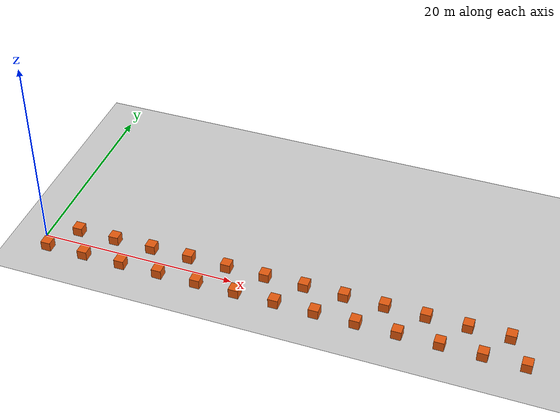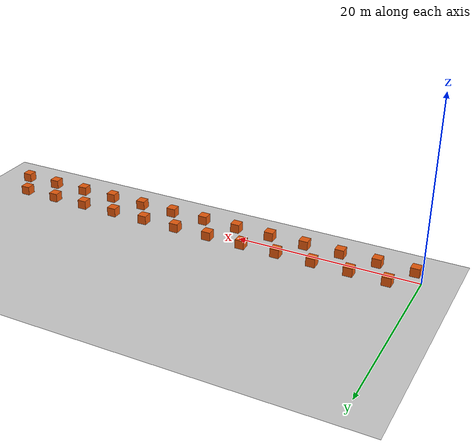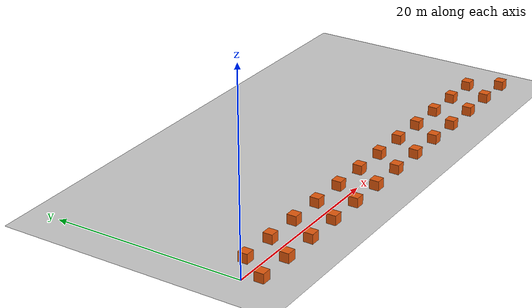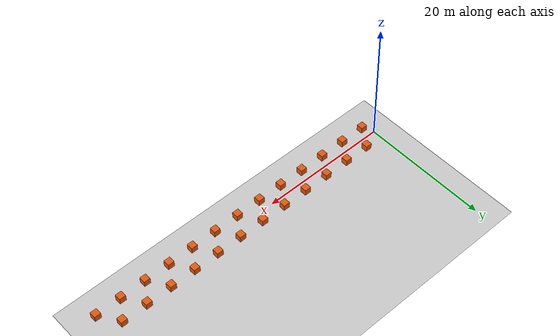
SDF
<?xml version="1.0" ?>
<sdf version="1.7">
  <world name="staggered_blocks_50m">
    <include>
      <uri>model://sun</uri>
    </include>
    <include>
      <uri>model://ground_plane</uri>
    </include>

    <physics name="default_physics" type="ode">
      <max_step_size>0.001</max_step_size>
      <real_time_factor>1.0</real_time_factor>
      <real_time_update_rate>1000</real_time_update_rate>
      <gravity>0 0 -9.8</gravity>
    </physics>

    <model name="staggered_blocks">
      <static>true</static>

      <link name="block_01">
        <pose>1 -1.5 0.5 0 0 0</pose>
        <collision name="collision"><geometry><box><size>1 1 1</size></box></geometry></collision>
        <visual name="visual"><geometry><box><size>1 1 1</size></box></geometry><material><ambient>0.9 0.35 0.05 1</ambient><diffuse>0.9 0.35 0.05 1</diffuse></material></visual>
      </link>
      <link name="block_02">
        <pose>3 1.5 0.5 0 0 0</pose>
        <collision name="collision"><geometry><box><size>1 1 1</size></box></geometry></collision>
        <visual name="visual"><geometry><box><size>1 1 1</size></box></geometry><material><ambient>0.9 0.35 0.05 1</ambient><diffuse>0.9 0.35 0.05 1</diffuse></material></visual>
      </link>
      <link name="block_03">
        <pose>5 -1.5 0.5 0 0 0</pose>
        <collision name="collision"><geometry><box><size>1 1 1</size></box></geometry></collision>
        <visual name="visual"><geometry><box><size>1 1 1</size></box></geometry><material><ambient>0.9 0.35 0.05 1</ambient><diffuse>0.9 0.35 0.05 1</diffuse></material></visual>
      </link>
      <link name="block_04">
        <pose>7 1.5 0.5 0 0 0</pose>
        <collision name="collision"><geometry><box><size>1 1 1</size></box></geometry></collision>
        <visual name="visual"><geometry><box><size>1 1 1</size></box></geometry><material><ambient>0.9 0.35 0.05 1</ambient><diffuse>0.9 0.35 0.05 1</diffuse></material></visual>
      </link>
      <link name="block_05">
        <pose>9 -1.5 0.5 0 0 0</pose>
        <collision name="collision"><geometry><box><size>1 1 1</size></box></geometry></collision>
        <visual name="visual"><geometry><box><size>1 1 1</size></box></geometry><material><ambient>0.9 0.35 0.05 1</ambient><diffuse>0.9 0.35 0.05 1</diffuse></material></visual>
      </link>
      <link name="block_06">
        <pose>11 1.5 0.5 0 0 0</pose>
        <collision name="collision"><geometry><box><size>1 1 1</size></box></geometry></collision>
        <visual name="visual"><geometry><box><size>1 1 1</size></box></geometry><material><ambient>0.9 0.35 0.05 1</ambient><diffuse>0.9 0.35 0.05 1</diffuse></material></visual>
      </link>
      <link name="block_07">
        <pose>13 -1.5 0.5 0 0 0</pose>
        <collision name="collision"><geometry><box><size>1 1 1</size></box></geometry></collision>
        <visual name="visual"><geometry><box><size>1 1 1</size></box></geometry><material><ambient>0.9 0.35 0.05 1</ambient><diffuse>0.9 0.35 0.05 1</diffuse></material></visual>
      </link>
      <link name="block_08">
        <pose>15 1.5 0.5 0 0 0</pose>
        <collision name="collision"><geometry><box><size>1 1 1</size></box></geometry></collision>
        <visual name="visual"><geometry><box><size>1 1 1</size></box></geometry><material><ambient>0.9 0.35 0.05 1</ambient><diffuse>0.9 0.35 0.05 1</diffuse></material></visual>
      </link>
      <link name="block_09">
        <pose>17 -1.5 0.5 0 0 0</pose>
        <collision name="collision"><geometry><box><size>1 1 1</size></box></geometry></collision>
        <visual name="visual"><geometry><box><size>1 1 1</size></box></geometry><material><ambient>0.9 0.35 0.05 1</ambient><diffuse>0.9 0.35 0.05 1</diffuse></material></visual>
      </link>
      <link name="block_10">
        <pose>19 1.5 0.5 0 0 0</pose>
        <collision name="collision"><geometry><box><size>1 1 1</size></box></geometry></collision>
        <visual name="visual"><geometry><box><size>1 1 1</size></box></geometry><material><ambient>0.9 0.35 0.05 1</ambient><diffuse>0.9 0.35 0.05 1</diffuse></material></visual>
      </link>
      <link name="block_11">
        <pose>21 -1.5 0.5 0 0 0</pose>
        <collision name="collision"><geometry><box><size>1 1 1</size></box></geometry></collision>
        <visual name="visual"><geometry><box><size>1 1 1</size></box></geometry><material><ambient>0.9 0.35 0.05 1</ambient><diffuse>0.9 0.35 0.05 1</diffuse></material></visual>
      </link>
      <link name="block_12">
        <pose>23 1.5 0.5 0 0 0</pose>
        <collision name="collision"><geometry><box><size>1 1 1</size></box></geometry></collision>
        <visual name="visual"><geometry><box><size>1 1 1</size></box></geometry><material><ambient>0.9 0.35 0.05 1</ambient><diffuse>0.9 0.35 0.05 1</diffuse></material></visual>
      </link>
      <link name="block_13">
        <pose>25 -1.5 0.5 0 0 0</pose>
        <collision name="collision"><geometry><box><size>1 1 1</size></box></geometry></collision>
        <visual name="visual"><geometry><box><size>1 1 1</size></box></geometry><material><ambient>0.9 0.35 0.05 1</ambient><diffuse>0.9 0.35 0.05 1</diffuse></material></visual>
      </link>
      <link name="block_14">
        <pose>27 1.5 0.5 0 0 0</pose>
        <collision name="collision"><geometry><box><size>1 1 1</size></box></geometry></collision>
        <visual name="visual"><geometry><box><size>1 1 1</size></box></geometry><material><ambient>0.9 0.35 0.05 1</ambient><diffuse>0.9 0.35 0.05 1</diffuse></material></visual>
      </link>
      <link name="block_15">
        <pose>29 -1.5 0.5 0 0 0</pose>
        <collision name="collision"><geometry><box><size>1 1 1</size></box></geometry></collision>
        <visual name="visual"><geometry><box><size>1 1 1</size></box></geometry><material><ambient>0.9 0.35 0.05 1</ambient><diffuse>0.9 0.35 0.05 1</diffuse></material></visual>
      </link>
      <link name="block_16">
        <pose>31 1.5 0.5 0 0 0</pose>
        <collision name="collision"><geometry><box><size>1 1 1</size></box></geometry></collision>
        <visual name="visual"><geometry><box><size>1 1 1</size></box></geometry><material><ambient>0.9 0.35 0.05 1</ambient><diffuse>0.9 0.35 0.05 1</diffuse></material></visual>
      </link>
      <link name="block_17">
        <pose>33 -1.5 0.5 0 0 0</pose>
        <collision name="collision"><geometry><box><size>1 1 1</size></box></geometry></collision>
        <visual name="visual"><geometry><box><size>1 1 1</size></box></geometry><material><ambient>0.9 0.35 0.05 1</ambient><diffuse>0.9 0.35 0.05 1</diffuse></material></visual>
      </link>
      <link name="block_18">
        <pose>35 1.5 0.5 0 0 0</pose>
        <collision name="collision"><geometry><box><size>1 1 1</size></box></geometry></collision>
        <visual name="visual"><geometry><box><size>1 1 1</size></box></geometry><material><ambient>0.9 0.35 0.05 1</ambient><diffuse>0.9 0.35 0.05 1</diffuse></material></visual>
      </link>
      <link name="block_19">
        <pose>37 -1.5 0.5 0 0 0</pose>
        <collision name="collision"><geometry><box><size>1 1 1</size></box></geometry></collision>
        <visual name="visual"><geometry><box><size>1 1 1</size></box></geometry><material><ambient>0.9 0.35 0.05 1</ambient><diffuse>0.9 0.35 0.05 1</diffuse></material></visual>
      </link>
      <link name="block_20">
        <pose>39 1.5 0.5 0 0 0</pose>
        <collision name="collision"><geometry><box><size>1 1 1</size></box></geometry></collision>
        <visual name="visual"><geometry><box><size>1 1 1</size></box></geometry><material><ambient>0.9 0.35 0.05 1</ambient><diffuse>0.9 0.35 0.05 1</diffuse></material></visual>
      </link>
      <link name="block_21">
        <pose>41 -1.5 0.5 0 0 0</pose>
        <collision name="collision"><geometry><box><size>1 1 1</size></box></geometry></collision>
        <visual name="visual"><geometry><box><size>1 1 1</size></box></geometry><material><ambient>0.9 0.35 0.05 1</ambient><diffuse>0.9 0.35 0.05 1</diffuse></material></visual>
      </link>
      <link name="block_22">
        <pose>43 1.5 0.5 0 0 0</pose>
        <collision name="collision"><geometry><box><size>1 1 1</size></box></geometry></collision>
        <visual name="visual"><geometry><box><size>1 1 1</size></box></geometry><material><ambient>0.9 0.35 0.05 1</ambient><diffuse>0.9 0.35 0.05 1</diffuse></material></visual>
      </link>
      <link name="block_23">
        <pose>45 -1.5 0.5 0 0 0</pose>
        <collision name="collision"><geometry><box><size>1 1 1</size></box></geometry></collision>
        <visual name="visual"><geometry><box><size>1 1 1</size></box></geometry><material><ambient>0.9 0.35 0.05 1</ambient><diffuse>0.9 0.35 0.05 1</diffuse></material></visual>
      </link>
      <link name="block_24">
        <pose>47 1.5 0.5 0 0 0</pose>
        <collision name="collision"><geometry><box><size>1 1 1</size></box></geometry></collision>
        <visual name="visual"><geometry><box><size>1 1 1</size></box></geometry><material><ambient>0.9 0.35 0.05 1</ambient><diffuse>0.9 0.35 0.05 1</diffuse></material></visual>
      </link>
      <link name="block_25">
        <pose>49 -1.5 0.5 0 0 0</pose>
        <collision name="collision"><geometry><box><size>1 1 1</size></box></geometry></collision>
        <visual name="visual"><geometry><box><size>1 1 1</size></box></geometry><material><ambient>0.9 0.35 0.05 1</ambient><diffuse>0.9 0.35 0.05 1</diffuse></material></visual>
      </link>
    </model>

    <gui fullscreen="0">
      <camera name="user_camera">
        <pose>-8 -18 18 0 0.55 0.65</pose>
        <view_controller>orbit</view_controller>
      </camera>
    </gui>
  </world>
</sdf>
